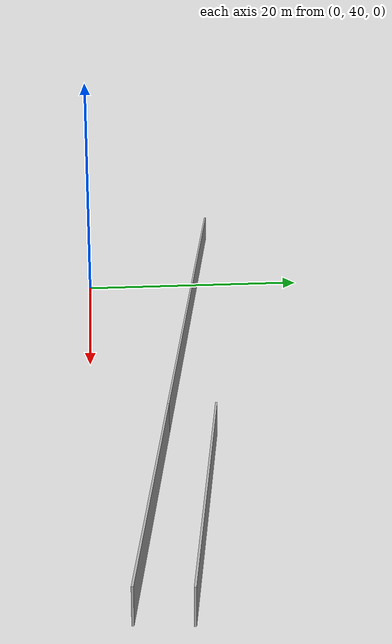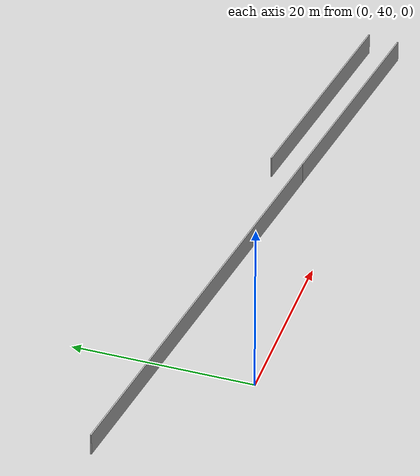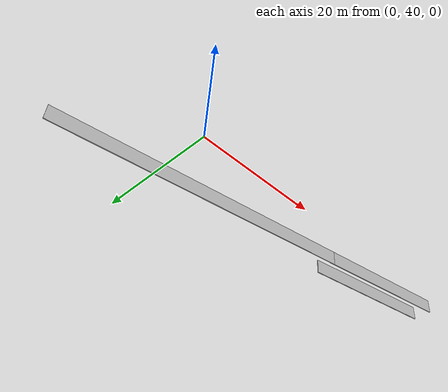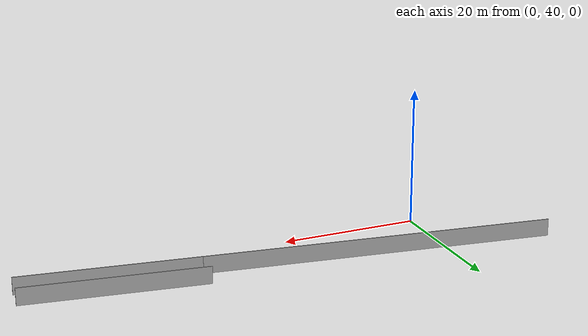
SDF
<?xml version="1.0" ?>
<sdf version="1.6">
  <model name="sps_2502">
    <pose frame="">0 0 0 0 -0 0</pose>
    <static>1</static>
    <self_collide>0</self_collide>
    <allow_auto_disable>0</allow_auto_disable>
    <link name="Wall303">
      <kinematic>0</kinematic>
      <gravity>1</gravity>
      <self_collide>0</self_collide>
      <collision name="collision">
        <geometry>
          <box>
            <size>25.4413 0.15 2.5</size>
          </box>
        </geometry>
        <pose frame="">0 0 0 0 -0 0</pose>
      </collision>
      <visual name="visual">
        <geometry>
          <box>
            <size>25.4413 0.15 2.5</size>
          </box>
        </geometry>
        <pose frame="">0 0 0 0 -0 0</pose>
        <cast_shadows>1</cast_shadows>
        <transparency>0.0</transparency>
      </visual>
      <pose frame="">47.077 44.005 1.25 0 -0 3.00818</pose>
    </link>
    <link name="Wall304">
      <kinematic>0</kinematic>
      <gravity>1</gravity>
      <self_collide>0</self_collide>
      <collision name="collision">
        <geometry>
          <box>
            <size>50.4483 0.15 2.5</size>
          </box>
        </geometry>
        <pose frame="">0 0 0 0 -0 0</pose>
      </collision>
      <visual name="visual">
        <geometry>
          <box>
            <size>50.4483 0.15 2.5</size>
          </box>
        </geometry>
        <pose frame="">0 0 0 0 -0 0</pose>
        <cast_shadows>1</cast_shadows>
        <transparency>0.0</transparency>
      </visual>
      <pose frame="">9.46944 49.0525 1.25 0 -0 3.00818</pose>
    </link>
    <link name="Wall561">
      <kinematic>0</kinematic>
      <gravity>1</gravity>
      <self_collide>0</self_collide>
      <collision name="collision">
        <geometry>
          <box>
            <size>25.8198 0.15 2.5</size>
          </box>
        </geometry>
        <pose frame="">0 0 0 0 -0 0</pose>
      </collision>
      <visual name="visual">
        <geometry>
          <box>
            <size>25.8198 0.15 2.5</size>
          </box>
        </geometry>
        <pose frame="">0 0 0 0 -0 0</pose>
        <cast_shadows>1</cast_shadows>
        <transparency>0.0</transparency>
      </visual>
      <pose frame="">47.2646 47.511 1.25 0 0 -0.133417</pose>
    </link>
  </model>
</sdf>
